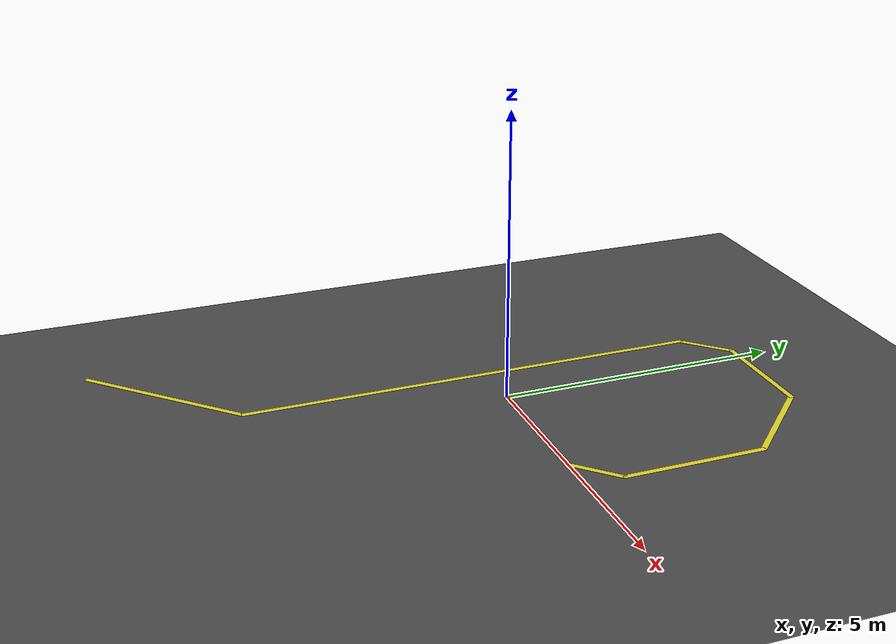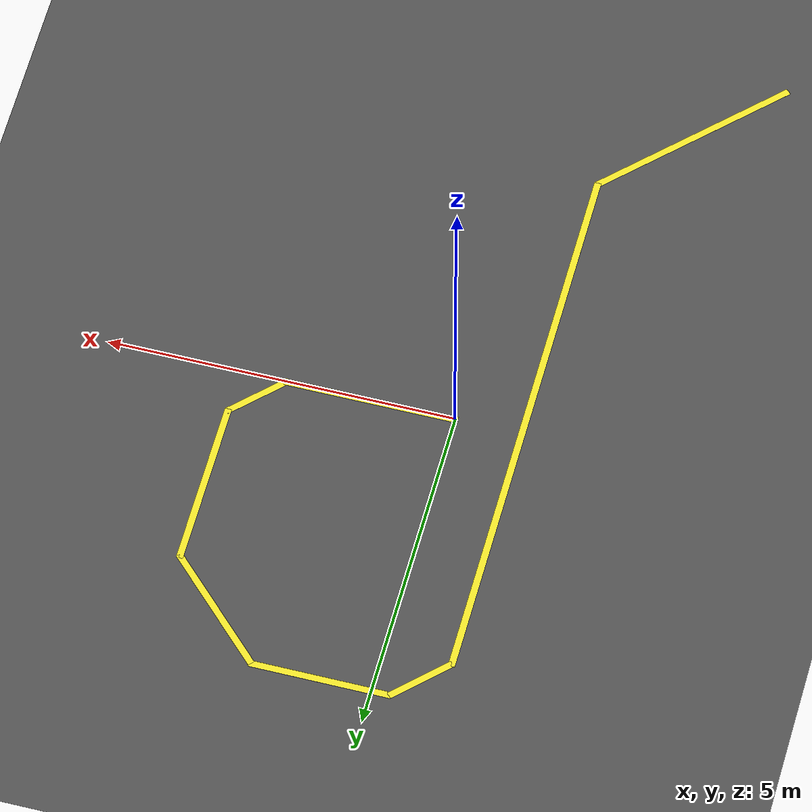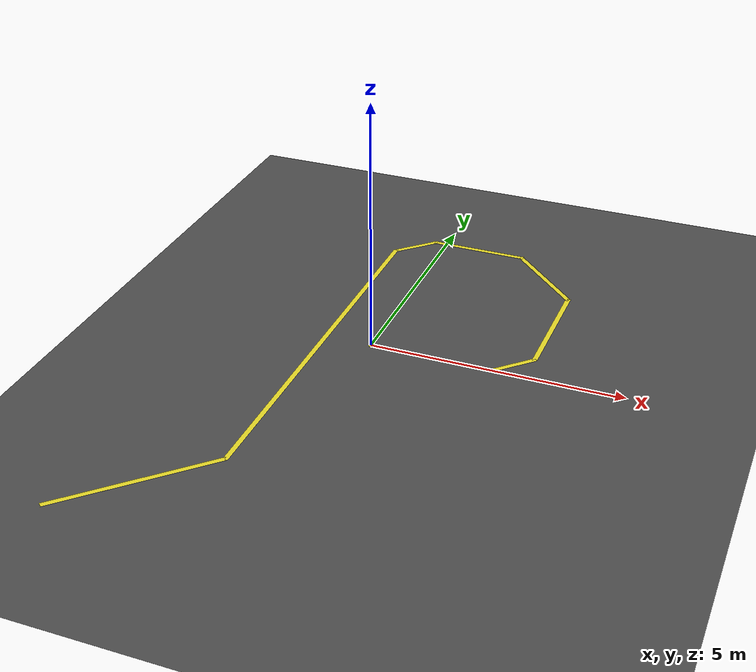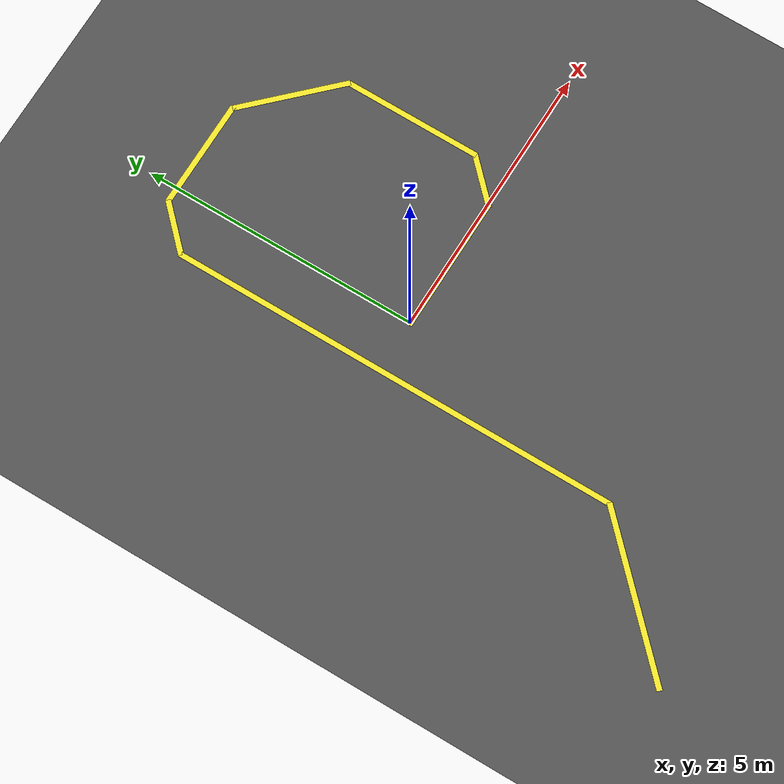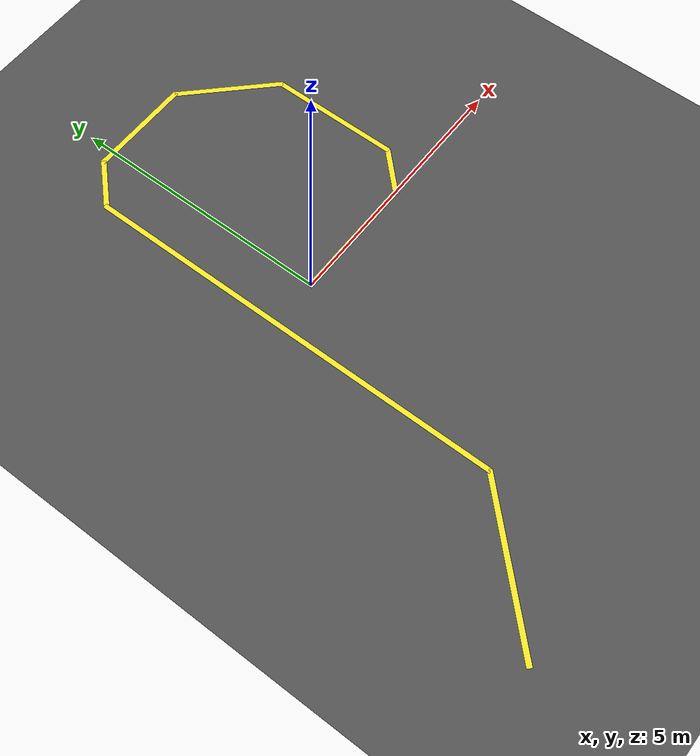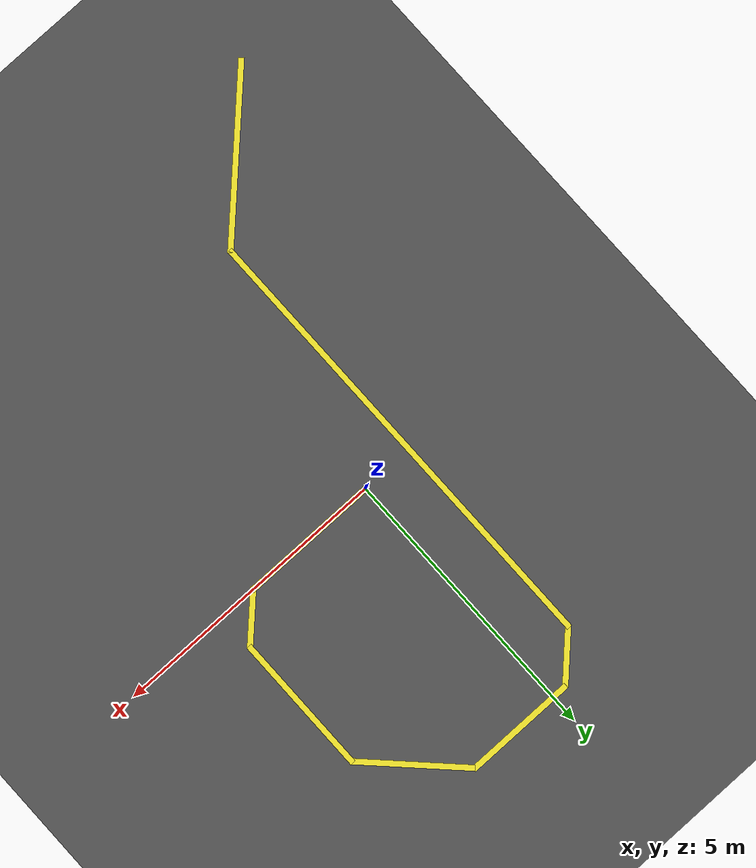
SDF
<sdf version='1.6'>
  <world name='default'>
    <!-- A ground plane -->
    <model name="ground_plane">
        <static>true</static>
        <link name="link">
        <collision name="collision">
            <geometry>
            <plane>
                <normal>0 0 1</normal>
                <size>100 100</size>
            </plane>
            </geometry>
            <surface>
            <friction>
                <ode>
                <mu>100</mu>
                <mu2>50</mu2>
                </ode>
            </friction>
            </surface>
        </collision>
        <visual name="visual">
            <pose>0 0 -0.001 0 0 0</pose>
            <cast_shadows>false</cast_shadows>
            <geometry>
            <plane>
                <normal>0 0 1</normal>
                <size>20 20</size>
            </plane>
            </geometry>
            <material>
            <script>
                <uri>file://media/materials/scripts/gazebo.material</uri>
                <name>Gazebo/DarkGrey</name>
            </script>
            </material>
        </visual>
        </link>
    </model>
    <light name='sun' type='directional'>
      <cast_shadows>1</cast_shadows>
      <pose frame=''>0 0 10 0 -0 0</pose>
      <diffuse>0.8 0.8 0.8 1</diffuse>
      <specular>0.1 0.1 0.1 1</specular>
      <attenuation>
        <range>1000</range>
        <constant>0.9</constant>
        <linear>0.01</linear>
        <quadratic>0.001</quadratic>
      </attenuation>
      <direction>-0.5 0.5 -1</direction>
    </light>
    <gravity>0 0 -9.8</gravity>
    <magnetic_field>6e-06 2.3e-05 -4.2e-05</magnetic_field>
    <atmosphere type='adiabatic'/>
    <physics name='default_physics' default='0' type='ode'>
      <max_step_size>0.001</max_step_size>
      <real_time_factor>1</real_time_factor>
      <real_time_update_rate>1000</real_time_update_rate>
    </physics>
    <scene>
      <ambient>0.4 0.4 0.4 1</ambient>
      <background>0.7 0.7 0.7 1</background>
      <shadows>1</shadows>
    </scene>
    <spherical_coordinates>
      <surface_model>EARTH_WGS84</surface_model>
      <latitude_deg>0</latitude_deg>
      <longitude_deg>0</longitude_deg>
      <elevation>0</elevation>
      <heading_deg>0</heading_deg>
    </spherical_coordinates>
    <model name='yellow line_0'>
      <static>1</static>
      <link name='link_ground'>
        <collision name='collision'>
          <geometry>
            <plane>
              <normal>0 0 1</normal>
              <size>0.1 2.5</size>
            </plane>
          </geometry>
          <surface>
            <friction>
              <ode>
                <mu>100</mu>
                <mu2>50</mu2>
              </ode>
              <torsional>
                <ode/>
              </torsional>
            </friction>
            <contact>
              <ode/>
            </contact>
            <bounce/>
          </surface>
          <max_contacts>10</max_contacts>
        </collision>
        <visual name='visual_ground'>
          <cast_shadows>0</cast_shadows>
          <geometry>
            <plane>
              <normal>0 0 1</normal>
              <size>0.1 2.49</size>
            </plane>
          </geometry>
          <material>
            <script>
              <uri>file://media/materials/scripts/gazebo.material</uri>
              <name>Gazebo/DarkYellow</name>
            </script>
          </material>
        </visual>
        <self_collide>0</self_collide>
        <kinematic>0</kinematic>
        <gravity>1</gravity>
      </link>
      <pose frame=''>1.21 0 0 0 -0 1.57</pose>
    </model>
    <model name='yellow line_1'>
      <static>1</static>
      <link name='link_ground'>
        <collision name='collision'>
          <geometry>
            <plane>
              <normal>0 0 1</normal>
              <size>0.1 1</size>
            </plane>
          </geometry>
          <surface>
            <friction>
              <ode>
                <mu>100</mu>
                <mu2>50</mu2>
              </ode>
              <torsional>
                <ode/>
              </torsional>
            </friction>
            <contact>
              <ode/>
            </contact>
            <bounce/>
          </surface>
          <max_contacts>10</max_contacts>
        </collision>
        <visual name='visual_ground'>
          <cast_shadows>0</cast_shadows>
          <geometry>
            <plane>
              <normal>0 0 1</normal>
              <size>0.1 1</size>
            </plane>
          </geometry>
          <material>
            <script>
              <uri>file://media/materials/scripts/gazebo.material</uri>
              <name>Gazebo/DarkYellow</name>
            </script>
          </material>
        </visual>
        <self_collide>0</self_collide>
        <kinematic>0</kinematic>
        <gravity>1</gravity>
      </link>
      <pose frame=''>2.75 0.32 0 0 0 -0.785</pose>
    </model>
    <model name='yellow line_2'>
      <static>1</static>
      <link name='link_ground'>
        <collision name='collision'>
          <geometry>
            <plane>
              <normal>0 0 1</normal>
              <size>0.1 2.5</size>
            </plane>
          </geometry>
          <surface>
            <friction>
              <ode>
                <mu>100</mu>
                <mu2>50</mu2>
              </ode>
              <torsional>
                <ode/>
              </torsional>
            </friction>
            <contact>
              <ode/>
            </contact>
            <bounce/>
          </surface>
          <max_contacts>10</max_contacts>
        </collision>
        <visual name='visual_ground'>
          <cast_shadows>0</cast_shadows>
          <geometry>
            <plane>
              <normal>0 0 1</normal>
              <size>0.1 2.5</size>
            </plane>
          </geometry>
          <material>
            <script>
              <uri>file://media/materials/scripts/gazebo.material</uri>
              <name>Gazebo/DarkYellow</name>
            </script>
          </material>
        </visual>
        <self_collide>0</self_collide>
        <kinematic>0</kinematic>
        <gravity>1</gravity>
      </link>
      <pose frame=''>3.085 1.88 0 0 -0 0</pose>
    </model>
    <model name='yellow line_3'>
      <static>1</static>
      <link name='link_ground'>
        <collision name='collision'>
          <geometry>
            <plane>
              <normal>0 0 1</normal>
              <size>0.1 2</size>
            </plane>
          </geometry>
          <surface>
            <friction>
              <ode>
                <mu>100</mu>
                <mu2>50</mu2>
              </ode>
              <torsional>
                <ode/>
              </torsional>
            </friction>
            <contact>
              <ode/>
            </contact>
            <bounce/>
          </surface>
          <max_contacts>10</max_contacts>
        </collision>
        <visual name='visual_ground'>
          <cast_shadows>0</cast_shadows>
          <geometry>
            <plane>
              <normal>0 0 1</normal>
              <size>0.1 2</size>
            </plane>
          </geometry>
          <material>
            <script>
              <uri>file://media/materials/scripts/gazebo.material</uri>
              <name>Gazebo/DarkYellow</name>
            </script>
          </material>
        </visual>
        <self_collide>0</self_collide>
        <kinematic>0</kinematic>
        <gravity>1</gravity>
      </link>
      <pose frame=''>2.395 3.789 0 0 -0 0.785</pose>
    </model>
    <model name='yellow line_4'>
      <static>1</static>
      <link name='link_ground'>
        <collision name='collision'>
          <geometry>
            <plane>
              <normal>0 0 1</normal>
              <size>0.1 2</size>
            </plane>
          </geometry>
          <surface>
            <friction>
              <ode>
                <mu>100</mu>
                <mu2>50</mu2>
              </ode>
              <torsional>
                <ode/>
              </torsional>
            </friction>
            <contact>
              <ode/>
            </contact>
            <bounce/>
          </surface>
          <max_contacts>10</max_contacts>
        </collision>
        <visual name='visual_ground'>
          <cast_shadows>0</cast_shadows>
          <geometry>
            <plane>
              <normal>0 0 1</normal>
              <size>0.1 2</size>
            </plane>
          </geometry>
          <material>
            <script>
              <uri>file://media/materials/scripts/gazebo.material</uri>
              <name>Gazebo/DarkYellow</name>
            </script>
          </material>
        </visual>
        <self_collide>0</self_collide>
        <kinematic>0</kinematic>
        <gravity>1</gravity>
      </link>
      <pose frame=''>0.72 4.5 0 0 -0 1.57</pose>
    </model>
    <model name='yellow line_5'>
      <static>1</static>
      <link name='link_ground'>
        <collision name='collision'>
          <geometry>
            <plane>
              <normal>0 0 1</normal>
              <size>0.1 1</size>
            </plane>
          </geometry>
          <surface>
            <friction>
              <ode>
                <mu>100</mu>
                <mu2>50</mu2>
              </ode>
              <torsional>
                <ode/>
              </torsional>
            </friction>
            <contact>
              <ode/>
            </contact>
            <bounce/>
          </surface>
          <max_contacts>10</max_contacts>
        </collision>
        <visual name='visual_ground'>
          <cast_shadows>0</cast_shadows>
          <geometry>
            <plane>
              <normal>0 0 1</normal>
              <size>0.1 1</size>
            </plane>
          </geometry>
          <material>
            <script>
              <uri>file://media/materials/scripts/gazebo.material</uri>
              <name>Gazebo/DarkYellow</name>
            </script>
          </material>
        </visual>
        <self_collide>0</self_collide>
        <kinematic>0</kinematic>
        <gravity>1</gravity>
      </link>
      <pose frame=''>-0.6 4.16 0 0 0 -0.785</pose>
    </model>
    <model name='yellow line_6'>
      <static>1</static>
      <link name='link_ground'>
        <collision name='collision'>
          <geometry>
            <plane>
              <normal>0 0 1</normal>
              <size>0.1 8.2</size>
            </plane>
          </geometry>
          <surface>
            <friction>
              <ode>
                <mu>100</mu>
                <mu2>50</mu2>
              </ode>
              <torsional>
                <ode/>
              </torsional>
            </friction>
            <contact>
              <ode/>
            </contact>
            <bounce/>
          </surface>
          <max_contacts>10</max_contacts>
        </collision>
        <visual name='visual_ground'>
          <cast_shadows>0</cast_shadows>
          <geometry>
            <plane>
              <normal>0 0 1</normal>
              <size>0.1 8.2</size>
            </plane>
          </geometry>
          <material>
            <script>
              <uri>file://media/materials/scripts/gazebo.material</uri>
              <name>Gazebo/DarkYellow</name>
            </script>
          </material>
        </visual>
        <self_collide>0</self_collide>
        <kinematic>0</kinematic>
        <gravity>1</gravity>
      </link>
      <pose frame=''>-0.946 -0.25 0 0 -0 0</pose>
    </model>
    <model name='yellow line_7'>
      <static>1</static>
      <link name='link_ground'>
        <collision name='collision'>
          <geometry>
            <plane>
              <normal>0 0 1</normal>
              <size>0.1 3.2</size>
            </plane>
          </geometry>
          <surface>
            <friction>
              <ode>
                <mu>100</mu>
                <mu2>50</mu2>
              </ode>
              <torsional>
                <ode/>
              </torsional>
            </friction>
            <contact>
              <ode/>
            </contact>
            <bounce/>
          </surface>
          <max_contacts>10</max_contacts>
        </collision>
        <visual name='visual_ground'>
          <cast_shadows>0</cast_shadows>
          <geometry>
            <plane>
              <normal>0 0 1</normal>
              <size>0.1 3.2</size>
            </plane>
          </geometry>
          <material>
            <script>
              <uri>file://media/materials/scripts/gazebo.material</uri>
              <name>Gazebo/DarkYellow</name>
            </script>
          </material>
        </visual>
        <self_collide>0</self_collide>
        <kinematic>0</kinematic>
        <gravity>1</gravity>
      </link>
      <pose frame=''>-2.06 -5.44 0 0 0 -0.785</pose>
    </model>

    <gui fullscreen='0'>
      <camera name='user_camera'>
        <pose frame=''>-1.96488 -4.86229 8.96244 -0 1.5658 -0.00</pose>
        <view_controller>orbit</view_controller>
        <projection_type>perspective</projection_type>
      </camera>
    </gui>
  </world>
</sdf>
